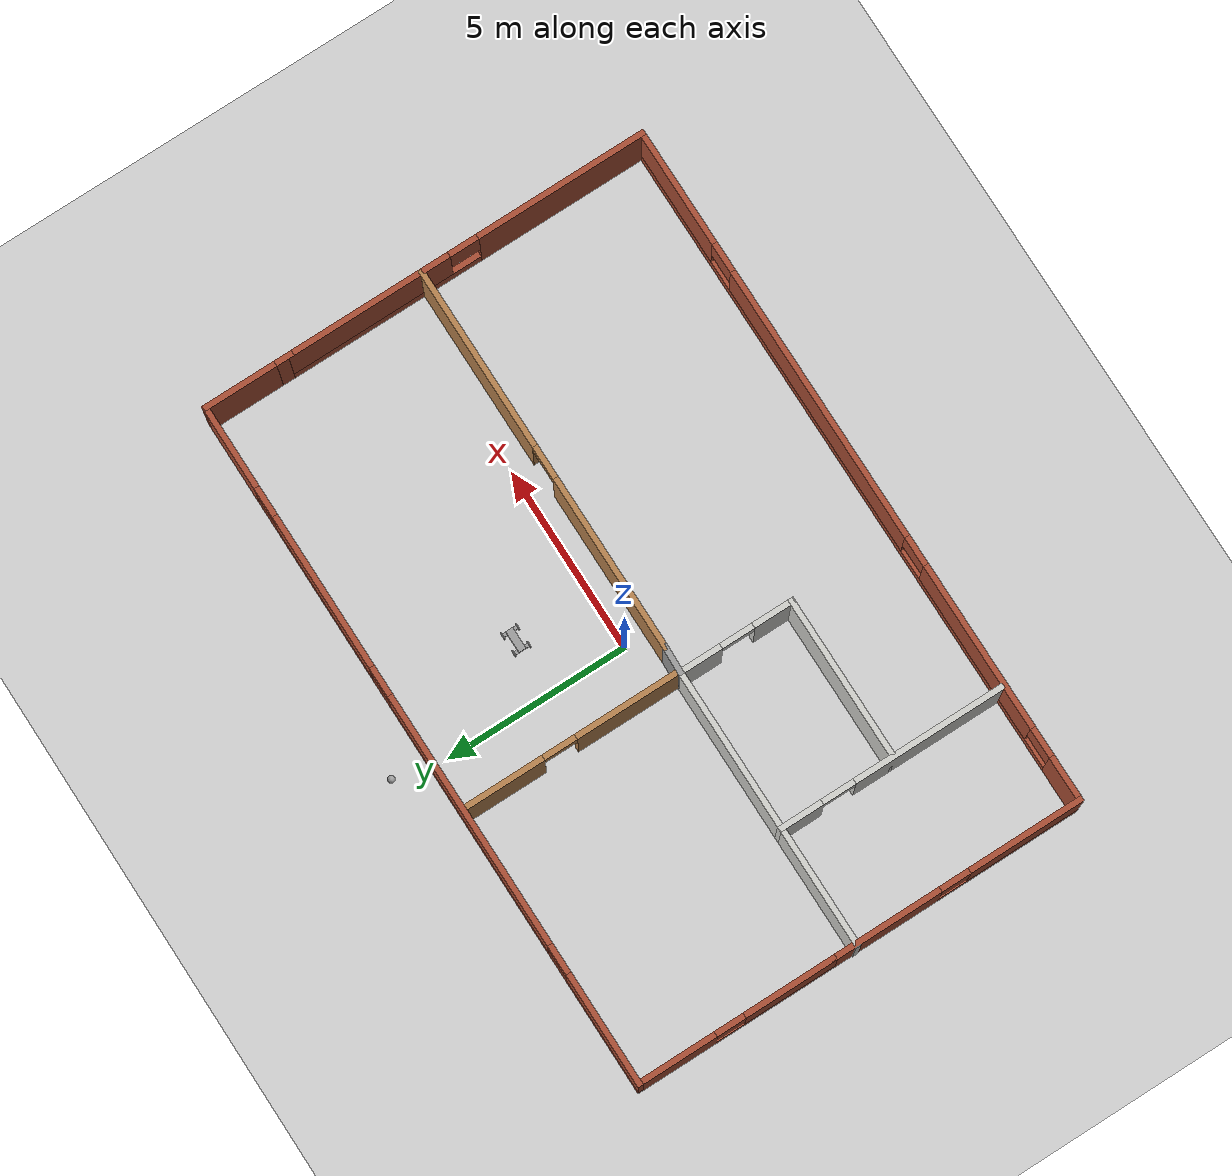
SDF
<sdf version="1.6">
 <world name="default">
  <model name="ground_plane">
   <static>1</static>
   <link name="link">
    <collision name="collision">
     <geometry><plane><normal>0 0 1</normal><size>100 100</size></plane></geometry>
     <surface>
      <contact><collide_bitmask>65535</collide_bitmask></contact>
      <friction><ode><mu>100</mu><mu2>50</mu2></ode></friction>
     </surface>
    </collision>
    <visual name="visual">
     <cast_shadows>0</cast_shadows>
     <geometry><plane><normal>0 0 1</normal><size>100 100</size></plane></geometry>
     <material>
      <script><uri>file://media/materials/scripts/gazebo.material</uri><name>Gazebo/Grey</name></script>
     </material>
    </visual>
   </link>
  </model>
  <model name="Ground_Floor">
   <pose>0.3947 -0.6993 0 0 -0 0</pose>
   <link name="Wall_15">
    <pose>-9.41574 3.425 0 0 0 -1.5708</pose>
    <visual name="Wall_15_Visual_0">
     <pose>-1.66053 0 1.25 0 -0 0</pose>
     <geometry><box><size>2.17893 0.15 2.5</size></box></geometry>
     <material>
      <script><uri>file://media/materials/scripts/gazebo.material</uri><name>Gazebo/Bricks</name></script>
      <ambient>1 1 1 1</ambient>
     </material>
     <meta><layer>0</layer></meta>
    </visual>
    <collision name="Wall_15_Collision_0">
     <geometry><box><size>2.17893 0.15 2.5</size></box></geometry>
     <pose>-1.66053 0 1.25 0 -0 0</pose>
    </collision>
    <visual name="Wall_15_Visual_1">
     <pose>1.08947 0 0.25 0 -0 0</pose>
     <geometry><box><size>3.32107 0.15 0.5</size></box></geometry>
     <material>
      <script><uri>file://media/materials/scripts/gazebo.material</uri><name>Gazebo/Bricks</name></script>
      <ambient>1 1 1 1</ambient>
     </material>
     <meta><layer>0</layer></meta>
    </visual>
    <collision name="Wall_15_Collision_1">
     <geometry><box><size>3.32107 0.15 0.5</size></box></geometry>
     <pose>1.08947 0 0.25 0 -0 0</pose>
    </collision>
    <visual name="Wall_15_Visual_2">
     <pose>1.48947 0 1.5 0 -0 0</pose>
     <geometry><box><size>2.52107 0.15 2</size></box></geometry>
     <material>
      <script><uri>file://media/materials/scripts/gazebo.material</uri><name>Gazebo/Bricks</name></script>
      <ambient>1 1 1 1</ambient>
     </material>
     <meta><layer>0</layer></meta>
    </visual>
    <collision name="Wall_15_Collision_2">
     <geometry><box><size>2.52107 0.15 2</size></box></geometry>
     <pose>1.48947 0 1.5 0 -0 0</pose>
    </collision>
    <visual name="Wall_15_Visual_3">
     <pose>-0.171069 0 1.9 0 -0 0</pose>
     <geometry><box><size>0.8 0.15 1.2</size></box></geometry>
     <material>
      <script><uri>file://media/materials/scripts/gazebo.material</uri><name>Gazebo/Bricks</name></script>
      <ambient>1 1 1 1</ambient>
     </material>
     <meta><layer>0</layer></meta>
    </visual>
    <collision name="Wall_15_Collision_3">
     <geometry><box><size>0.8 0.15 1.2</size></box></geometry>
     <pose>-0.171069 0 1.9 0 -0 0</pose>
    </collision>
   </link>
   <link name="Wall_17">
    <pose>-9.41574 -2.675 0 0 0 -1.5708</pose>
    <visual name="Wall_17_Visual_0">
     <pose>-1.97447 0 1.25 0 -0 0</pose>
     <geometry><box><size>3.05106 0.15 2.5</size></box></geometry>
     <material>
      <script><uri>file://media/materials/scripts/gazebo.material</uri><name>Gazebo/Bricks</name></script>
      <ambient>1 1 1 1</ambient>
     </material>
     <meta><layer>0</layer></meta>
    </visual>
    <collision name="Wall_17_Collision_0">
     <geometry><box><size>3.05106 0.15 2.5</size></box></geometry>
     <pose>-1.97447 0 1.25 0 -0 0</pose>
    </collision>
    <visual name="Wall_17_Visual_1">
     <pose>1.52553 0 0.25 0 -0 0</pose>
     <geometry><box><size>3.94894 0.15 0.5</size></box></geometry>
     <material>
      <script><uri>file://media/materials/scripts/gazebo.material</uri><name>Gazebo/Bricks</name></script>
      <ambient>1 1 1 1</ambient>
     </material>
     <meta><layer>0</layer></meta>
    </visual>
    <collision name="Wall_17_Collision_1">
     <geometry><box><size>3.94894 0.15 0.5</size></box></geometry>
     <pose>1.52553 0 0.25 0 -0 0</pose>
    </collision>
    <visual name="Wall_17_Visual_2">
     <pose>1.92553 0 1.5 0 -0 0</pose>
     <geometry><box><size>3.14894 0.15 2</size></box></geometry>
     <material>
      <script><uri>file://media/materials/scripts/gazebo.material</uri><name>Gazebo/Bricks</name></script>
      <ambient>1 1 1 1</ambient>
     </material>
     <meta><layer>0</layer></meta>
    </visual>
    <collision name="Wall_17_Collision_2">
     <geometry><box><size>3.14894 0.15 2</size></box></geometry>
     <pose>1.92553 0 1.5 0 -0 0</pose>
    </collision>
    <visual name="Wall_17_Visual_3">
     <pose>-0.048936 0 1.9 0 -0 0</pose>
     <geometry><box><size>0.8 0.15 1.2</size></box></geometry>
     <material>
      <script><uri>file://media/materials/scripts/gazebo.material</uri><name>Gazebo/Bricks</name></script>
      <ambient>1 1 1 1</ambient>
     </material>
     <meta><layer>0</layer></meta>
    </visual>
    <collision name="Wall_17_Collision_3">
     <geometry><box><size>0.8 0.15 1.2</size></box></geometry>
     <pose>-0.048936 0 1.9 0 -0 0</pose>
    </collision>
   </link>
   <link name="Wall_18">
    <pose>0.009256 -6.1 0 0 -0 0</pose>
    <visual name="Wall_18_Visual_0">
     <pose>-8.86219 0 1.25 0 -0 0</pose>
     <geometry><box><size>1.27563 0.15 2.5</size></box></geometry>
     <material>
      <script><uri>file://media/materials/scripts/gazebo.material</uri><name>Gazebo/Bricks</name></script>
      <ambient>1 1 1 1</ambient>
     </material>
     <meta><layer>0</layer></meta>
    </visual>
    <collision name="Wall_18_Collision_0">
     <geometry><box><size>1.27563 0.15 2.5</size></box></geometry>
     <pose>-8.86219 0 1.25 0 -0 0</pose>
    </collision>
    <visual name="Wall_18_Visual_1">
     <pose>0.637815 0 0.25 0 -0 0</pose>
     <geometry><box><size>17.7244 0.15 0.5</size></box></geometry>
     <material>
      <script><uri>file://media/materials/scripts/gazebo.material</uri><name>Gazebo/Bricks</name></script>
      <ambient>1 1 1 1</ambient>
     </material>
     <meta><layer>0</layer></meta>
    </visual>
    <collision name="Wall_18_Collision_1">
     <geometry><box><size>17.7244 0.15 0.5</size></box></geometry>
     <pose>0.637815 0 0.25 0 -0 0</pose>
    </collision>
    <visual name="Wall_18_Visual_2">
     <pose>-5.14122 0 1.5 0 -0 0</pose>
     <geometry><box><size>4.5663 0.15 2</size></box></geometry>
     <material>
      <script><uri>file://media/materials/scripts/gazebo.material</uri><name>Gazebo/Bricks</name></script>
      <ambient>1 1 1 1</ambient>
     </material>
     <meta><layer>0</layer></meta>
    </visual>
    <collision name="Wall_18_Collision_2">
     <geometry><box><size>4.5663 0.15 2</size></box></geometry>
     <pose>-5.14122 0 1.5 0 -0 0</pose>
    </collision>
    <visual name="Wall_18_Visual_3">
     <pose>1.70544 0 1.5 0 -0 0</pose>
     <geometry><box><size>7.52702 0.15 2</size></box></geometry>
     <material>
      <script><uri>file://media/materials/scripts/gazebo.material</uri><name>Gazebo/Bricks</name></script>
      <ambient>1 1 1 1</ambient>
     </material>
     <meta><layer>0</layer></meta>
    </visual>
    <collision name="Wall_18_Collision_3">
     <geometry><box><size>7.52702 0.15 2</size></box></geometry>
     <pose>1.70544 0 1.5 0 -0 0</pose>
    </collision>
    <visual name="Wall_18_Visual_4">
     <pose>7.88448 0 1.5 0 -0 0</pose>
     <geometry><box><size>3.23105 0.15 2</size></box></geometry>
     <material>
      <script><uri>file://media/materials/scripts/gazebo.material</uri><name>Gazebo/Bricks</name></script>
      <ambient>1 1 1 1</ambient>
     </material>
     <meta><layer>0</layer></meta>
    </visual>
    <collision name="Wall_18_Collision_4">
     <geometry><box><size>3.23105 0.15 2</size></box></geometry>
     <pose>7.88448 0 1.5 0 -0 0</pose>
    </collision>
    <visual name="Wall_18_Visual_5">
     <pose>-7.82437 0 1.9 0 -0 0</pose>
     <geometry><box><size>0.8 0.15 1.2</size></box></geometry>
     <material>
      <script><uri>file://media/materials/scripts/gazebo.material</uri><name>Gazebo/Bricks</name></script>
      <ambient>1 1 1 1</ambient>
     </material>
     <meta><layer>0</layer></meta>
    </visual>
    <collision name="Wall_18_Collision_5">
     <geometry><box><size>0.8 0.15 1.2</size></box></geometry>
     <pose>-7.82437 0 1.9 0 -0 0</pose>
    </collision>
    <visual name="Wall_18_Visual_6">
     <pose>-2.45807 0 1.9 0 -0 0</pose>
     <geometry><box><size>0.8 0.15 1.2</size></box></geometry>
     <material>
      <script><uri>file://media/materials/scripts/gazebo.material</uri><name>Gazebo/Bricks</name></script>
      <ambient>1 1 1 1</ambient>
     </material>
     <meta><layer>0</layer></meta>
    </visual>
    <collision name="Wall_18_Collision_6">
     <geometry><box><size>0.8 0.15 1.2</size></box></geometry>
     <pose>-2.45807 0 1.9 0 -0 0</pose>
    </collision>
    <visual name="Wall_18_Visual_7">
     <pose>5.86895 0 1.9 0 -0 0</pose>
     <geometry><box><size>0.8 0.15 1.2</size></box></geometry>
     <material>
      <script><uri>file://media/materials/scripts/gazebo.material</uri><name>Gazebo/Bricks</name></script>
      <ambient>1 1 1 1</ambient>
     </material>
     <meta><layer>0</layer></meta>
    </visual>
    <collision name="Wall_18_Collision_7">
     <geometry><box><size>0.8 0.15 1.2</size></box></geometry>
     <pose>5.86895 0 1.9 0 -0 0</pose>
    </collision>
   </link>
   <link name="Wall_19">
    <pose>9.43426 -1.175 0 0 -0 1.5708</pose>
    <visual name="Wall_19_Visual_0">
     <pose>-2.65066 0 1.25 0 -0 0</pose>
     <geometry><box><size>4.69869 0.15 2.5</size></box></geometry>
     <material>
      <script><uri>file://media/materials/scripts/gazebo.material</uri><name>Gazebo/Bricks</name></script>
      <ambient>1 1 1 1</ambient>
     </material>
     <meta><layer>0</layer></meta>
    </visual>
    <collision name="Wall_19_Collision_0">
     <geometry><box><size>4.69869 0.15 2.5</size></box></geometry>
     <pose>-2.65066 0 1.25 0 -0 0</pose>
    </collision>
    <visual name="Wall_19_Visual_1">
     <pose>2.34934 0 0.25 0 -0 0</pose>
     <geometry><box><size>5.30131 0.15 0.5</size></box></geometry>
     <material>
      <script><uri>file://media/materials/scripts/gazebo.material</uri><name>Gazebo/Bricks</name></script>
      <ambient>1 1 1 1</ambient>
     </material>
     <meta><layer>0</layer></meta>
    </visual>
    <collision name="Wall_19_Collision_1">
     <geometry><box><size>5.30131 0.15 0.5</size></box></geometry>
     <pose>2.34934 0 0.25 0 -0 0</pose>
    </collision>
    <visual name="Wall_19_Visual_2">
     <pose>2.74934 0 1.5 0 -0 0</pose>
     <geometry><box><size>4.50131 0.15 2</size></box></geometry>
     <material>
      <script><uri>file://media/materials/scripts/gazebo.material</uri><name>Gazebo/Bricks</name></script>
      <ambient>1 1 1 1</ambient>
     </material>
     <meta><layer>0</layer></meta>
    </visual>
    <collision name="Wall_19_Collision_2">
     <geometry><box><size>4.50131 0.15 2</size></box></geometry>
     <pose>2.74934 0 1.5 0 -0 0</pose>
    </collision>
    <visual name="Wall_19_Visual_3">
     <pose>0.098686 0 1.9 0 -0 0</pose>
     <geometry><box><size>0.8 0.15 1.2</size></box></geometry>
     <material>
      <script><uri>file://media/materials/scripts/gazebo.material</uri><name>Gazebo/Bricks</name></script>
      <ambient>1 1 1 1</ambient>
     </material>
     <meta><layer>0</layer></meta>
    </visual>
    <collision name="Wall_19_Collision_3">
     <geometry><box><size>0.8 0.15 1.2</size></box></geometry>
     <pose>0.098686 0 1.9 0 -0 0</pose>
    </collision>
   </link>
   <link name="Wall_21">
    <pose>9.43426 4.925 0 0 -0 1.5708</pose>
    <visual name="Wall_21_Visual_0">
     <pose>0 0 1.25 0 -0 0</pose>
     <geometry><box><size>2.5 0.15 2.5</size></box></geometry>
     <material>
      <script><uri>file://media/materials/scripts/gazebo.material</uri><name>Gazebo/Bricks</name></script>
      <ambient>1 1 1 1</ambient>
     </material>
     <meta><layer>0</layer></meta>
    </visual>
    <collision name="Wall_21_Collision_0">
     <geometry><box><size>2.5 0.15 2.5</size></box></geometry>
     <pose>0 0 1.25 0 -0 0</pose>
    </collision>
    <visual name="Wall_21_Visual_1">
     <pose>0.243361 0 1.25 0 -0 0</pose>
     <geometry><box><size>2.01328 0.15 2.5</size></box></geometry>
     <material>
      <script><uri>file://media/materials/scripts/gazebo.material</uri><name>Gazebo/Bricks</name></script>
      <ambient>1 1 1 1</ambient>
     </material>
     <meta><layer>0</layer></meta>
    </visual>
    <collision name="Wall_21_Collision_1">
     <geometry><box><size>2.01328 0.15 2.5</size></box></geometry>
     <pose>0.243361 0 1.25 0 -0 0</pose>
    </collision>
   </link>
   <link name="Wall_22">
    <pose>0.009256 6.1 0 0 -0 3.14159</pose>
    <visual name="Wall_22_Visual_0">
     <pose>-8.33552 0 1.25 0 -0 0</pose>
     <geometry><box><size>2.32896 0.15 2.5</size></box></geometry>
     <material>
      <script><uri>file://media/materials/scripts/gazebo.material</uri><name>Gazebo/Bricks</name></script>
      <ambient>1 1 1 1</ambient>
     </material>
     <meta><layer>0</layer></meta>
    </visual>
    <collision name="Wall_22_Collision_0">
     <geometry><box><size>2.32896 0.15 2.5</size></box></geometry>
     <pose>-8.33552 0 1.25 0 -0 0</pose>
    </collision>
    <visual name="Wall_22_Visual_1">
     <pose>1.16448 0 0.25 0 -0 0</pose>
     <geometry><box><size>16.671 0.15 0.5</size></box></geometry>
     <material>
      <script><uri>file://media/materials/scripts/gazebo.material</uri><name>Gazebo/Bricks</name></script>
      <ambient>1 1 1 1</ambient>
     </material>
     <meta><layer>0</layer></meta>
    </visual>
    <collision name="Wall_22_Collision_1">
     <geometry><box><size>16.671 0.15 0.5</size></box></geometry>
     <pose>1.16448 0 0.25 0 -0 0</pose>
    </collision>
    <visual name="Wall_22_Visual_2">
     <pose>-4.24981 0 1.5 0 -0 0</pose>
     <geometry><box><size>4.24247 0.15 2</size></box></geometry>
     <material>
      <script><uri>file://media/materials/scripts/gazebo.material</uri><name>Gazebo/Bricks</name></script>
      <ambient>1 1 1 1</ambient>
     </material>
     <meta><layer>0</layer></meta>
    </visual>
    <collision name="Wall_22_Collision_2">
     <geometry><box><size>4.24247 0.15 2</size></box></geometry>
     <pose>-4.24981 0 1.5 0 -0 0</pose>
    </collision>
    <visual name="Wall_22_Visual_3">
     <pose>2.13424 0 1.5 0 -0 0</pose>
     <geometry><box><size>6.92562 0.15 2</size></box></geometry>
     <material>
      <script><uri>file://media/materials/scripts/gazebo.material</uri><name>Gazebo/Bricks</name></script>
      <ambient>1 1 1 1</ambient>
     </material>
     <meta><layer>0</layer></meta>
    </visual>
    <collision name="Wall_22_Collision_3">
     <geometry><box><size>6.92562 0.15 2</size></box></geometry>
     <pose>2.13424 0 1.5 0 -0 0</pose>
    </collision>
    <visual name="Wall_22_Visual_4">
     <pose>7.94853 0 1.5 0 -0 0</pose>
     <geometry><box><size>3.10295 0.15 2</size></box></geometry>
     <material>
      <script><uri>file://media/materials/scripts/gazebo.material</uri><name>Gazebo/Bricks</name></script>
      <ambient>1 1 1 1</ambient>
     </material>
     <meta><layer>0</layer></meta>
    </visual>
    <collision name="Wall_22_Collision_4">
     <geometry><box><size>3.10295 0.15 2</size></box></geometry>
     <pose>7.94853 0 1.5 0 -0 0</pose>
    </collision>
    <visual name="Wall_22_Visual_5">
     <pose>-6.77104 0 1.9 0 -0 0</pose>
     <geometry><box><size>0.8 0.15 1.2</size></box></geometry>
     <material>
      <script><uri>file://media/materials/scripts/gazebo.material</uri><name>Gazebo/Bricks</name></script>
      <ambient>1 1 1 1</ambient>
     </material>
     <meta><layer>0</layer></meta>
    </visual>
    <collision name="Wall_22_Collision_5">
     <geometry><box><size>0.8 0.15 1.2</size></box></geometry>
     <pose>-6.77104 0 1.9 0 -0 0</pose>
    </collision>
    <visual name="Wall_22_Visual_6">
     <pose>-1.72857 0 1.9 0 -0 0</pose>
     <geometry><box><size>0.8 0.15 1.2</size></box></geometry>
     <material>
      <script><uri>file://media/materials/scripts/gazebo.material</uri><name>Gazebo/Bricks</name></script>
      <ambient>1 1 1 1</ambient>
     </material>
     <meta><layer>0</layer></meta>
    </visual>
    <collision name="Wall_22_Collision_6">
     <geometry><box><size>0.8 0.15 1.2</size></box></geometry>
     <pose>-1.72857 0 1.9 0 -0 0</pose>
    </collision>
    <visual name="Wall_22_Visual_7">
     <pose>5.99705 0 1.9 0 -0 0</pose>
     <geometry><box><size>0.8 0.15 1.2</size></box></geometry>
     <material>
      <script><uri>file://media/materials/scripts/gazebo.material</uri><name>Gazebo/Bricks</name></script>
      <ambient>1 1 1 1</ambient>
     </material>
     <meta><layer>0</layer></meta>
    </visual>
    <collision name="Wall_22_Collision_7">
     <geometry><box><size>0.8 0.15 1.2</size></box></geometry>
     <pose>5.99705 0 1.9 0 -0 0</pose>
    </collision>
   </link>
   <link name="Wall_24">
    <collision name="Wall_24_Collision">
     <geometry><box><size>7.75 0.15 2.5</size></box></geometry>
     <pose>0 0 1.25 0 -0 0</pose>
    </collision>
    <visual name="Wall_24_Visual">
     <pose>0 0 1.25 0 -0 0</pose>
     <geometry><box><size>7.75 0.15 2.5</size></box></geometry>
     <material>
      <script><uri>file://media/materials/scripts/gazebo.material</uri><name>Gazebo/CeilingTiled</name></script>
      <ambient>1 1 1 1</ambient>
     </material>
     <meta><layer>0</layer></meta>
    </visual>
    <pose>-5.63426 0.103347 0 0 -0 0</pose>
   </link>
   <link name="Wall_25">
    <pose>-1.83426 3.02835 0 0 -0 1.5708</pose>
    <visual name="Wall_25_Visual_0">
     <pose>-1.5221 0 1.25 0 -0 0</pose>
     <geometry><box><size>2.95581 0.15 2.5</size></box></geometry>
     <material>
      <script><uri>file://media/materials/scripts/gazebo.material</uri><name>Gazebo/Wood</name></script>
      <ambient>1 1 1 1</ambient>
     </material>
     <meta><layer>0</layer></meta>
    </visual>
    <collision name="Wall_25_Collision_0">
     <geometry><box><size>2.95581 0.15 2.5</size></box></geometry>
     <pose>-1.5221 0 1.25 0 -0 0</pose>
    </collision>
    <visual name="Wall_25_Visual_1">
     <pose>1.9279 0 1.25 0 -0 0</pose>
     <geometry><box><size>2.14419 0.15 2.5</size></box></geometry>
     <material>
      <script><uri>file://media/materials/scripts/gazebo.material</uri><name>Gazebo/Wood</name></script>
      <ambient>1 1 1 1</ambient>
     </material>
     <meta><layer>0</layer></meta>
    </visual>
    <collision name="Wall_25_Collision_1">
     <geometry><box><size>2.14419 0.15 2.5</size></box></geometry>
     <pose>1.9279 0 1.25 0 -0 0</pose>
    </collision>
    <visual name="Wall_25_Visual_2">
     <pose>0.405807 0 2.25 0 -0 0</pose>
     <geometry><box><size>0.9 0.15 0.5</size></box></geometry>
     <material>
      <script><uri>file://media/materials/scripts/gazebo.material</uri><name>Gazebo/Wood</name></script>
      <ambient>1 1 1 1</ambient>
     </material>
     <meta><layer>0</layer></meta>
    </visual>
    <collision name="Wall_25_Collision_2">
     <geometry><box><size>0.9 0.15 0.5</size></box></geometry>
     <pose>0.405807 0 2.25 0 -0 0</pose>
    </collision>
   </link>
   <link name="Wall_27">
    <pose>-6.2191 -2.94665 0 0 0 -1.5708</pose>
    <visual name="Wall_27_Visual_0">
     <pose>-2.52606 0 1.25 0 -0 0</pose>
     <geometry><box><size>1.19788 0.15 2.5</size></box></geometry>
     <material>
      <script><uri>file://media/materials/scripts/gazebo.material</uri><name>Gazebo/CeilingTiled</name></script>
      <ambient>1 1 1 1</ambient>
     </material>
     <meta><layer>0</layer></meta>
    </visual>
    <collision name="Wall_27_Collision_0">
     <geometry><box><size>1.19788 0.15 2.5</size></box></geometry>
     <pose>-2.52606 0 1.25 0 -0 0</pose>
    </collision>
    <visual name="Wall_27_Visual_1">
     <pose>1.04894 0 1.25 0 -0 0</pose>
     <geometry><box><size>4.15212 0.15 2.5</size></box></geometry>
     <material>
      <script><uri>file://media/materials/scripts/gazebo.material</uri><name>Gazebo/CeilingTiled</name></script>
      <ambient>1 1 1 1</ambient>
     </material>
     <meta><layer>0</layer></meta>
    </visual>
    <collision name="Wall_27_Collision_1">
     <geometry><box><size>4.15212 0.15 2.5</size></box></geometry>
     <pose>1.04894 0 1.25 0 -0 0</pose>
    </collision>
    <visual name="Wall_27_Visual_2">
     <pose>-1.47712 0 2.25 0 -0 0</pose>
     <geometry><box><size>0.9 0.15 0.5</size></box></geometry>
     <material>
      <script><uri>file://media/materials/scripts/gazebo.material</uri><name>Gazebo/CeilingTiled</name></script>
      <ambient>1 1 1 1</ambient>
     </material>
     <meta><layer>0</layer></meta>
    </visual>
    <collision name="Wall_27_Collision_2">
     <geometry><box><size>0.9 0.15 0.5</size></box></geometry>
     <pose>-1.47712 0 2.25 0 -0 0</pose>
    </collision>
   </link>
   <link name="Wall_29">
    <collision name="Wall_29_Collision">
     <geometry><box><size>4.5 0.15 2.5</size></box></geometry>
     <pose>0 0 1.25 0 -0 0</pose>
    </collision>
    <visual name="Wall_29_Visual">
     <pose>0 0 1.25 0 -0 0</pose>
     <geometry><box><size>4.5 0.15 2.5</size></box></geometry>
     <material>
      <script><uri>file://media/materials/scripts/gazebo.material</uri><name>Gazebo/CeilingTiled</name></script>
      <ambient>1 1 1 1</ambient>
     </material>
     <meta><layer>0</layer></meta>
    </visual>
    <pose>-4.0441 -2.99615 0 0 -0 0</pose>
   </link>
   <link name="Wall_30">
    <pose>-1.8691 -1.44615 0 0 -0 1.5708</pose>
    <visual name="Wall_30_Visual_0">
     <pose>-1.04919 0 1.25 0 -0 0</pose>
     <geometry><box><size>1.15162 0.15 2.5</size></box></geometry>
     <material>
      <script><uri>file://media/materials/scripts/gazebo.material</uri><name>Gazebo/CeilingTiled</name></script>
      <ambient>1 1 1 1</ambient>
     </material>
     <meta><layer>0</layer></meta>
    </visual>
    <collision name="Wall_30_Collision_0">
     <geometry><box><size>1.15162 0.15 2.5</size></box></geometry>
     <pose>-1.04919 0 1.25 0 -0 0</pose>
    </collision>
    <visual name="Wall_30_Visual_1">
     <pose>1.02581 0 1.25 0 -0 0</pose>
     <geometry><box><size>1.19838 0.15 2.5</size></box></geometry>
     <material>
      <script><uri>file://media/materials/scripts/gazebo.material</uri><name>Gazebo/CeilingTiled</name></script>
      <ambient>1 1 1 1</ambient>
     </material>
     <meta><layer>0</layer></meta>
    </visual>
    <collision name="Wall_30_Collision_1">
     <geometry><box><size>1.19838 0.15 2.5</size></box></geometry>
     <pose>1.02581 0 1.25 0 -0 0</pose>
    </collision>
    <visual name="Wall_30_Visual_2">
     <pose>-0.02338 0 2.25 0 -0 0</pose>
     <geometry><box><size>0.9 0.15 0.5</size></box></geometry>
     <material>
      <script><uri>file://media/materials/scripts/gazebo.material</uri><name>Gazebo/CeilingTiled</name></script>
      <ambient>1 1 1 1</ambient>
     </material>
     <meta><layer>0</layer></meta>
    </visual>
    <collision name="Wall_30_Collision_2">
     <geometry><box><size>0.9 0.15 0.5</size></box></geometry>
     <pose>-0.02338 0 2.25 0 -0 0</pose>
    </collision>
   </link>
   <link name="Wall_32">
    <pose>4.11719 0.080217 0 0 -0 3.14159</pose>
    <visual name="Wall_32_Visual_0">
     <pose>-2.86778 0 1.25 0 -0 0</pose>
     <geometry><box><size>5.01443 0.15 2.5</size></box></geometry>
     <material>
      <script><uri>file://media/materials/scripts/gazebo.material</uri><name>Gazebo/Wood</name></script>
      <ambient>1 1 1 1</ambient>
     </material>
     <meta><layer>0</layer></meta>
    </visual>
    <collision name="Wall_32_Collision_0">
     <geometry><box><size>5.01443 0.15 2.5</size></box></geometry>
     <pose>-2.86778 0 1.25 0 -0 0</pose>
    </collision>
    <visual name="Wall_32_Visual_1">
     <pose>2.95722 0 1.25 0 -0 0</pose>
     <geometry><box><size>4.83557 0.15 2.5</size></box></geometry>
     <material>
      <script><uri>file://media/materials/scripts/gazebo.material</uri><name>Gazebo/Wood</name></script>
      <ambient>1 1 1 1</ambient>
     </material>
     <meta><layer>0</layer></meta>
    </visual>
    <collision name="Wall_32_Collision_1">
     <geometry><box><size>4.83557 0.15 2.5</size></box></geometry>
     <pose>2.95722 0 1.25 0 -0 0</pose>
    </collision>
    <visual name="Wall_32_Visual_2">
     <pose>0.089432 0 2.25 0 -0 0</pose>
     <geometry><box><size>0.9 0.15 0.5</size></box></geometry>
     <material>
      <script><uri>file://media/materials/scripts/gazebo.material</uri><name>Gazebo/Wood</name></script>
      <ambient>1 1 1 1</ambient>
     </material>
     <meta><layer>0</layer></meta>
    </visual>
    <collision name="Wall_32_Collision_2">
     <geometry><box><size>0.9 0.15 0.5</size></box></geometry>
     <pose>0.089432 0 2.25 0 -0 0</pose>
    </collision>
   </link>
   <link name="Wall_33">
    <collision name="Wall_33_Collision">
     <geometry><box><size>0.836697 0.15 2.5</size></box></geometry>
     <pose>0 0 1.25 0 -0 0</pose>
    </collision>
    <visual name="Wall_33_Visual">
     <pose>0 0 1.25 0 -0 0</pose>
     <geometry><box><size>0.836697 0.15 2.5</size></box></geometry>
     <material>
      <script><uri>file://media/materials/scripts/gazebo.material</uri><name>Gazebo/Grey</name></script>
      <ambient>1 1 1 1</ambient>
     </material>
     <meta><layer>0</layer></meta>
    </visual>
    <pose>-1.52596 0.092031 0 0 -0 3.10718</pose>
   </link>
   <static>1</static>
  </model>
  <model name="Four_Wheel_Model">
   <link name="link_0">
    <pose>0 0 0.2 -6e-06 -0 1.5e-05</pose>
    <inertial>
     <mass>1</mass>
     <inertia>
      <ixx>0.166667</ixx>
      <ixy>0</ixy>
      <ixz>0</ixz>
      <iyy>0.166667</iyy>
      <iyz>0</iyz>
      <izz>0.166667</izz>
     </inertia>
    </inertial>
    <visual name="visual">
     <geometry><box><size>0.6 0.2 0.1</size></box></geometry>
     <material>
      <lighting>1</lighting>
      <script><uri>file://media/materials/scripts/gazebo.material</uri><name>Gazebo/Grey</name></script>
      <ambient>0.3 0.3 0.3 1</ambient>
      <diffuse>0.7 0.7 0.7 1</diffuse>
      <specular>0.01 0.01 0.01 1</specular>
      <emissive>0 0 0 1</emissive>
      <shader type="vertex"><normal_map>__default__</normal_map></shader>
     </material>
    </visual>
    <collision name="collision">
     <geometry><box><size>0.6 0.2 0.1</size></box></geometry>
     <surface>
      <friction>
       <ode><mu>1</mu><mu2>1</mu2><fdir1>0 0 0</fdir1><slip1>0</slip1><slip2>0</slip2></ode>
       <torsional>
        <coefficient>1</coefficient>
        <patch_radius>0</patch_radius>
        <surface_radius>0</surface_radius>
        <use_patch_radius>1</use_patch_radius>
        <ode><slip>0</slip></ode>
       </torsional>
      </friction>
      <bounce><restitution_coefficient>0</restitution_coefficient><threshold>1e+06</threshold></bounce>
      <contact>
       <collide_without_contact>0</collide_without_contact>
       <collide_without_contact_bitmask>1</collide_without_contact_bitmask>
       <collide_bitmask>1</collide_bitmask>
       <ode>
        <soft_cfm>0</soft_cfm>
        <soft_erp>0.2</soft_erp>
        <kp>1e+13</kp>
        <kd>1</kd>
        <max_vel>0.01</max_vel>
        <min_depth>0</min_depth>
       </ode>
       <bullet>
        <split_impulse>1</split_impulse>
        <split_impulse_penetration_threshold>-0.01</split_impulse_penetration_threshold>
        <soft_cfm>0</soft_cfm>
        <soft_erp>0.2</soft_erp>
        <kp>1e+13</kp>
        <kd>1</kd>
       </bullet>
      </contact>
     </surface>
    </collision>
   </link>
   <link name="link_0_0">
    <pose>-0.250001 0 0.162322 -6e-06 0 0</pose>
    <inertial>
     <mass>1</mass>
     <inertia>
      <ixx>0.166667</ixx>
      <ixy>0</ixy>
      <ixz>0</ixz>
      <iyy>0.166667</iyy>
      <iyz>0</iyz>
      <izz>0.166667</izz>
     </inertia>
    </inertial>
    <visual name="visual">
     <geometry><box><size>0.1 0.4 0.05</size></box></geometry>
     <material>
      <lighting>1</lighting>
      <script><uri>file://media/materials/scripts/gazebo.material</uri><name>Gazebo/Grey</name></script>
      <shader type="pixel"><normal_map>__default__</normal_map></shader>
      <ambient>0.3 0.3 0.3 1</ambient>
      <diffuse>0.7 0.7 0.7 1</diffuse>
      <specular>0.01 0.01 0.01 1</specular>
      <emissive>0 0 0 1</emissive>
     </material>
    </visual>
    <collision name="collision">
     <geometry><box><size>0.1 0.4 0.05</size></box></geometry>
     <surface>
      <friction>
       <ode><mu>1</mu><mu2>1</mu2><fdir1>0 0 0</fdir1><slip1>0</slip1><slip2>0</slip2></ode>
       <torsional>
        <coefficient>1</coefficient>
        <patch_radius>0</patch_radius>
        <surface_radius>0</surface_radius>
        <use_patch_radius>1</use_patch_radius>
        <ode><slip>0</slip></ode>
       </torsional>
      </friction>
      <bounce><restitution_coefficient>0</restitution_coefficient><threshold>1e+06</threshold></bounce>
      <contact>
       <collide_without_contact>0</collide_without_contact>
       <collide_without_contact_bitmask>1</collide_without_contact_bitmask>
       <collide_bitmask>1</collide_bitmask>
       <ode>
        <soft_cfm>0</soft_cfm>
        <soft_erp>0.2</soft_erp>
        <kp>1e+13</kp>
        <kd>1</kd>
        <max_vel>0.01</max_vel>
        <min_depth>0</min_depth>
       </ode>
       <bullet>
        <split_impulse>1</split_impulse>
        <split_impulse_penetration_threshold>-0.01</split_impulse_penetration_threshold>
        <soft_cfm>0</soft_cfm>
        <soft_erp>0.2</soft_erp>
        <kp>1e+13</kp>
        <kd>1</kd>
       </bullet>
      </contact>
     </surface>
    </collision>
   </link>
   <link name="link_0_clone_clone">
    <pose>0.249959 4e-06 0.175 -0 6e-06 1.57102</pose>
    <inertial>
     <mass>1</mass>
     <inertia>
      <ixx>0.166667</ixx>
      <ixy>0</ixy>
      <ixz>0</ixz>
      <iyy>0.166667</iyy>
      <iyz>0</iyz>
      <izz>0.166667</izz>
     </inertia>
    </inertial>
    <visual name="visual">
     <geometry><box><size>0.4 0.1 0.05</size></box></geometry>
     <material>
      <lighting>1</lighting>
      <script><uri>file://media/materials/scripts/gazebo.material</uri><name>Gazebo/Grey</name></script>
      <ambient>0.3 0.3 0.3 1</ambient>
      <diffuse>0.7 0.7 0.7 1</diffuse>
      <specular>0.01 0.01 0.01 1</specular>
      <emissive>0 0 0 1</emissive>
      <shader type="vertex"><normal_map>__default__</normal_map></shader>
     </material>
    </visual>
    <collision name="collision">
     <geometry><box><size>0.4 0.1 0.05</size></box></geometry>
     <surface>
      <friction>
       <ode><mu>1</mu><mu2>1</mu2><fdir1>0 0 0</fdir1><slip1>0</slip1><slip2>0</slip2></ode>
       <torsional>
        <coefficient>1</coefficient>
        <patch_radius>0</patch_radius>
        <surface_radius>0</surface_radius>
        <use_patch_radius>1</use_patch_radius>
        <ode><slip>0</slip></ode>
       </torsional>
      </friction>
      <bounce><restitution_coefficient>0</restitution_coefficient><threshold>1e+06</threshold></bounce>
      <contact>
       <collide_without_contact>0</collide_without_contact>
       <collide_without_contact_bitmask>1</collide_without_contact_bitmask>
       <collide_bitmask>1</collide_bitmask>
       <ode>
        <soft_cfm>0</soft_cfm>
        <soft_erp>0.2</soft_erp>
        <kp>1e+13</kp>
        <kd>1</kd>
        <max_vel>0.01</max_vel>
        <min_depth>0</min_depth>
       </ode>
       <bullet>
        <split_impulse>1</split_impulse>
        <split_impulse_penetration_threshold>-0.01</split_impulse_penetration_threshold>
        <soft_cfm>0</soft_cfm>
        <soft_erp>0.2</soft_erp>
        <kp>1e+13</kp>
        <kd>1</kd>
       </bullet>
      </contact>
     </surface>
    </collision>
   </link>
   <link name="link_1">
    <pose>0.250006 -0.209996 0.175001 -1.57012 1.57059 -3.14111</pose>
    <inertial>
     <mass>1</mass>
     <inertia><ixx>0.145833</ixx><ixy>0</ixy><ixz>0</ixz><iyy>0.145833</iyy><iyz>0</iyz><izz>0.125</izz></inertia>
    </inertial>
    <visual name="visual">
     <geometry><cylinder><radius>0.1</radius><length>0.025</length></cylinder></geometry>
     <material>
      <lighting>1</lighting>
      <script><uri>file://media/materials/scripts/gazebo.material</uri><name>Gazebo/Grey</name></script>
      <shader type="pixel"><normal_map>__default__</normal_map></shader>
      <ambient>0.3 0.3 0.3 1</ambient>
      <diffuse>0.7 0.7 0.7 1</diffuse>
      <specular>0.01 0.01 0.01 1</specular>
      <emissive>0 0 0 1</emissive>
     </material>
    </visual>
    <collision name="collision">
     <geometry><cylinder><radius>0.1</radius><length>0.025</length></cylinder></geometry>
     <surface>
      <friction>
       <ode><mu>1</mu><mu2>1</mu2><fdir1>0 0 0</fdir1><slip1>0</slip1><slip2>0</slip2></ode>
       <torsional>
        <coefficient>1</coefficient>
        <patch_radius>0</patch_radius>
        <surface_radius>0</surface_radius>
        <use_patch_radius>1</use_patch_radius>
        <ode><slip>0</slip></ode>
       </torsional>
      </friction>
      <bounce><restitution_coefficient>0</restitution_coefficient><threshold>1e+06</threshold></bounce>
      <contact>
       <collide_without_contact>0</collide_without_contact>
       <collide_without_contact_bitmask>1</collide_without_contact_bitmask>
       <collide_bitmask>1</collide_bitmask>
       <ode>
        <soft_cfm>0</soft_cfm>
        <soft_erp>0.2</soft_erp>
        <kp>1e+13</kp>
        <kd>1</kd>
        <max_vel>0.01</max_vel>
        <min_depth>0</min_depth>
       </ode>
       <bullet>
        <split_impulse>1</split_impulse>
        <split_impulse_penetration_threshold>-0.01</split_impulse_penetration_threshold>
        <soft_cfm>0</soft_cfm>
        <soft_erp>0.2</soft_erp>
        <kp>1e+13</kp>
        <kd>1</kd>
       </bullet>
      </contact>
     </surface>
    </collision>
   </link>
   <link name="link_1_0">
    <pose>0.249912 0.210004 0.174999 -1.5707 1.57059 3.14149</pose>
    <inertial>
     <mass>1</mass>
     <inertia><ixx>0.145833</ixx><ixy>0</ixy><ixz>0</ixz><iyy>0.145833</iyy><iyz>0</iyz><izz>0.125</izz></inertia>
    </inertial>
    <visual name="visual">
     <geometry><cylinder><radius>0.1</radius><length>0.025</length></cylinder></geometry>
     <material>
      <lighting>1</lighting>
      <script><uri>file://media/materials/scripts/gazebo.material</uri><name>Gazebo/Grey</name></script>
      <shader type="pixel"><normal_map>__default__</normal_map></shader>
      <ambient>0.3 0.3 0.3 1</ambient>
      <diffuse>0.7 0.7 0.7 1</diffuse>
      <specular>0.01 0.01 0.01 1</specular>
      <emissive>0 0 0 1</emissive>
     </material>
    </visual>
    <collision name="collision">
     <geometry><cylinder><radius>0.1</radius><length>0.025</length></cylinder></geometry>
     <surface>
      <friction>
       <ode><mu>1</mu><mu2>1</mu2><fdir1>0 0 0</fdir1><slip1>0</slip1><slip2>0</slip2></ode>
       <torsional>
        <coefficient>1</coefficient>
        <patch_radius>0</patch_radius>
        <surface_radius>0</surface_radius>
        <use_patch_radius>1</use_patch_radius>
        <ode><slip>0</slip></ode>
       </torsional>
      </friction>
      <bounce><restitution_coefficient>0</restitution_coefficient><threshold>1e+06</threshold></bounce>
      <contact>
       <collide_without_contact>0</collide_without_contact>
       <collide_without_contact_bitmask>1</collide_without_contact_bitmask>
       <collide_bitmask>1</collide_bitmask>
       <ode>
        <soft_cfm>0</soft_cfm>
        <soft_erp>0.2</soft_erp>
        <kp>1e+13</kp>
        <kd>1</kd>
        <max_vel>0.01</max_vel>
        <min_depth>0</min_depth>
       </ode>
       <bullet>
        <split_impulse>1</split_impulse>
        <split_impulse_penetration_threshold>-0.01</split_impulse_penetration_threshold>
        <soft_cfm>0</soft_cfm>
        <soft_erp>0.2</soft_erp>
        <kp>1e+13</kp>
        <kd>1</kd>
       </bullet>
      </contact>
     </surface>
    </collision>
   </link>
   <link name="link_2">
    <pose>-0.250001 -0.21 0.162323 -1.56983 1.57059 -3.14083</pose>
    <inertial>
     <mass>1</mass>
     <inertia><ixx>0.145833</ixx><ixy>0</ixy><ixz>0</ixz><iyy>0.145833</iyy><iyz>0</iyz><izz>0.125</izz></inertia>
    </inertial>
    <visual name="visual">
     <geometry><cylinder><radius>0.1</radius><length>0.025</length></cylinder></geometry>
     <material>
      <lighting>1</lighting>
      <script><uri>file://media/materials/scripts/gazebo.material</uri><name>Gazebo/Grey</name></script>
      <shader type="pixel"><normal_map>__default__</normal_map></shader>
      <ambient>0.3 0.3 0.3 1</ambient>
      <diffuse>0.7 0.7 0.7 1</diffuse>
      <specular>0.01 0.01 0.01 1</specular>
      <emissive>0 0 0 1</emissive>
     </material>
    </visual>
    <collision name="collision">
     <geometry><cylinder><radius>0.1</radius><length>0.025</length></cylinder></geometry>
     <surface>
      <friction>
       <ode><mu>1</mu><mu2>1</mu2><fdir1>0 0 0</fdir1><slip1>0</slip1><slip2>0</slip2></ode>
       <torsional>
        <coefficient>1</coefficient>
        <patch_radius>0</patch_radius>
        <surface_radius>0</surface_radius>
        <use_patch_radius>1</use_patch_radius>
        <ode><slip>0</slip></ode>
       </torsional>
      </friction>
      <bounce><restitution_coefficient>0</restitution_coefficient><threshold>1e+06</threshold></bounce>
      <contact>
       <collide_without_contact>0</collide_without_contact>
       <collide_without_contact_bitmask>1</collide_without_contact_bitmask>
       <collide_bitmask>1</collide_bitmask>
       <ode>
        <soft_cfm>0</soft_cfm>
        <soft_erp>0.2</soft_erp>
        <kp>1e+13</kp>
        <kd>1</kd>
        <max_vel>0.01</max_vel>
        <min_depth>0</min_depth>
       </ode>
       <bullet>
        <split_impulse>1</split_impulse>
        <split_impulse_penetration_threshold>-0.01</split_impulse_penetration_threshold>
        <soft_cfm>0</soft_cfm>
        <soft_erp>0.2</soft_erp>
        <kp>1e+13</kp>
        <kd>1</kd>
       </bullet>
      </contact>
     </surface>
    </collision>
   </link>
   <link name="link_3">
    <pose>-0.250001 0.21 0.162321 -1.57041 1.57059 -3.14141</pose>
    <inertial>
     <mass>1</mass>
     <inertia><ixx>0.145833</ixx><ixy>0</ixy><ixz>0</ixz><iyy>0.145833</iyy><iyz>0</iyz><izz>0.125</izz></inertia>
    </inertial>
    <visual name="visual">
     <geometry><cylinder><radius>0.1</radius><length>0.025</length></cylinder></geometry>
     <material>
      <lighting>1</lighting>
      <script><uri>file://media/materials/scripts/gazebo.material</uri><name>Gazebo/Grey</name></script>
      <shader type="pixel"><normal_map>__default__</normal_map></shader>
      <ambient>0.3 0.3 0.3 1</ambient>
      <diffuse>0.7 0.7 0.7 1</diffuse>
      <specular>0.01 0.01 0.01 1</specular>
      <emissive>0 0 0 1</emissive>
     </material>
    </visual>
    <collision name="collision">
     <geometry><cylinder><radius>0.1</radius><length>0.025</length></cylinder></geometry>
     <surface>
      <friction>
       <ode><mu>1</mu><mu2>1</mu2><fdir1>0 0 0</fdir1><slip1>0</slip1><slip2>0</slip2></ode>
       <torsional>
        <coefficient>1</coefficient>
        <patch_radius>0</patch_radius>
        <surface_radius>0</surface_radius>
        <use_patch_radius>1</use_patch_radius>
        <ode><slip>0</slip></ode>
       </torsional>
      </friction>
      <bounce><restitution_coefficient>0</restitution_coefficient><threshold>1e+06</threshold></bounce>
      <contact>
       <collide_without_contact>0</collide_without_contact>
       <collide_without_contact_bitmask>1</collide_without_contact_bitmask>
       <collide_bitmask>1</collide_bitmask>
       <ode>
        <soft_cfm>0</soft_cfm>
        <soft_erp>0.2</soft_erp>
        <kp>1e+13</kp>
        <kd>1</kd>
        <max_vel>0.01</max_vel>
        <min_depth>0</min_depth>
       </ode>
       <bullet>
        <split_impulse>1</split_impulse>
        <split_impulse_penetration_threshold>-0.01</split_impulse_penetration_threshold>
        <soft_cfm>0</soft_cfm>
        <soft_erp>0.2</soft_erp>
        <kp>1e+13</kp>
        <kd>1</kd>
       </bullet>
      </contact>
     </surface>
    </collision>
   </link>
   <joint name="link_0_0_JOINT_7" type="revolute">
    <parent>link_0_0</parent>
    <child>link_2</child>
    <axis>
     <xyz>0 0 -1</xyz>
     <use_parent_model_frame>0</use_parent_model_frame>
     <limit>
      <lower>-1.79769e+308</lower>
      <upper>1.79769e+308</upper>
      <effort>-1</effort>
      <velocity>-1</velocity>
     </limit>
     <dynamics>
      <spring_reference>0</spring_reference>
      <spring_stiffness>0</spring_stiffness>
      <damping>0</damping>
      <friction>0</friction>
     </dynamics>
    </axis>
    <physics>
     <ode><limit><cfm>0</cfm><erp>0.2</erp></limit><suspension><cfm>0</cfm><erp>0.2</erp></suspension></ode>
    </physics>
   </joint>
   <joint name="link_0_0_JOINT_8" type="revolute">
    <parent>link_0_0</parent>
    <child>link_3</child>
    <axis>
     <xyz>0 0 1</xyz>
     <use_parent_model_frame>0</use_parent_model_frame>
     <limit>
      <lower>-1.79769e+308</lower>
      <upper>1.79769e+308</upper>
      <effort>-1</effort>
      <velocity>-1</velocity>
     </limit>
     <dynamics>
      <spring_reference>0</spring_reference>
      <spring_stiffness>0</spring_stiffness>
      <damping>0</damping>
      <friction>0</friction>
     </dynamics>
    </axis>
    <physics>
     <ode><limit><cfm>0</cfm><erp>0.2</erp></limit><suspension><cfm>0</cfm><erp>0.2</erp></suspension></ode>
    </physics>
   </joint>
   <joint name="link_0_JOINT_0" type="fixed">
    <parent>link_0</parent>
    <child>link_0_clone_clone</child>
    <physics>
     <ode><limit><cfm>0</cfm><erp>0.2</erp></limit><suspension><cfm>0</cfm><erp>0.2</erp></suspension></ode>
    </physics>
   </joint>
   <joint name="link_0_JOINT_1" type="fixed">
    <parent>link_0</parent>
    <child>link_0_0</child>
    <physics>
     <ode><limit><cfm>0</cfm><erp>0.2</erp></limit><suspension><cfm>0</cfm><erp>0.2</erp></suspension></ode>
    </physics>
   </joint>
   <joint name="link_0_clone_clone_JOINT_5" type="revolute">
    <parent>link_0_clone_clone</parent>
    <child>link_1</child>
    <axis>
     <xyz>0 0 -1</xyz>
     <use_parent_model_frame>0</use_parent_model_frame>
     <limit>
      <lower>-1.79769e+308</lower>
      <upper>1.79769e+308</upper>
      <effort>-1</effort>
      <velocity>-1</velocity>
     </limit>
     <dynamics>
      <spring_reference>0</spring_reference>
      <spring_stiffness>0</spring_stiffness>
      <damping>0</damping>
      <friction>0</friction>
     </dynamics>
    </axis>
    <physics>
     <ode><limit><cfm>0</cfm><erp>0.2</erp></limit><suspension><cfm>0</cfm><erp>0.2</erp></suspension></ode>
    </physics>
   </joint>
   <joint name="link_0_clone_clone_JOINT_6" type="revolute">
    <parent>link_0_clone_clone</parent>
    <child>link_1_0</child>
    <axis>
     <xyz>0 0 1</xyz>
     <use_parent_model_frame>0</use_parent_model_frame>
     <limit>
      <lower>-1.79769e+308</lower>
      <upper>1.79769e+308</upper>
      <effort>-1</effort>
      <velocity>-1</velocity>
     </limit>
     <dynamics>
      <spring_reference>0</spring_reference>
      <spring_stiffness>0</spring_stiffness>
      <damping>0</damping>
      <friction>0</friction>
     </dynamics>
    </axis>
    <physics>
     <ode><limit><cfm>0</cfm><erp>0.2</erp></limit><suspension><cfm>0</cfm><erp>0.2</erp></suspension></ode>
    </physics>
   </joint>
   <static>0</static>
   <pose>1.5303 2.10212 -0.068608 4e-06 0.025354 0.000118</pose>
  </model>
  <model name="my_ball">
   <link name="link_0">
    <inertial>
     <mass>1</mass>
     <inertia><ixx>0.1</ixx><ixy>0</ixy><ixz>0</ixz><iyy>0.1</iyy><iyz>0</iyz><izz>0.1</izz></inertia>
    </inertial>
    <visual name="visual">
     <geometry><sphere><radius>0.1</radius></sphere></geometry>
     <material>
      <lighting>1</lighting>
      <script><uri>file://media/materials/scripts/gazebo.material</uri><name>Gazebo/Grey</name></script>
      <shader type="pixel"><normal_map>__default__</normal_map></shader>
      <ambient>1 1 1 1</ambient>
      <diffuse>1 1 1 1</diffuse>
      <specular>1 1 1 1</specular>
      <emissive>1 1 1 1</emissive>
     </material>
    </visual>
    <collision name="collision">
     <geometry><sphere><radius>0.1</radius></sphere></geometry>
     <surface>
      <friction>
       <ode><mu>1</mu><mu2>1</mu2><fdir1>0 0 0</fdir1><slip1>0</slip1><slip2>0</slip2></ode>
       <torsional>
        <coefficient>1</coefficient>
        <patch_radius>0</patch_radius>
        <surface_radius>0</surface_radius>
        <use_patch_radius>1</use_patch_radius>
        <ode><slip>0</slip></ode>
       </torsional>
      </friction>
      <bounce><restitution_coefficient>0</restitution_coefficient><threshold>1e+06</threshold></bounce>
      <contact>
       <collide_without_contact>0</collide_without_contact>
       <collide_without_contact_bitmask>1</collide_without_contact_bitmask>
       <collide_bitmask>1</collide_bitmask>
       <ode>
        <soft_cfm>0</soft_cfm>
        <soft_erp>0.2</soft_erp>
        <kp>1e+13</kp>
        <kd>1</kd>
        <max_vel>0.01</max_vel>
        <min_depth>0</min_depth>
       </ode>
       <bullet>
        <split_impulse>1</split_impulse>
        <split_impulse_penetration_threshold>-0.01</split_impulse_penetration_threshold>
        <soft_cfm>0</soft_cfm>
        <soft_erp>0.2</soft_erp>
        <kp>1e+13</kp>
        <kd>1</kd>
       </bullet>
      </contact>
     </surface>
    </collision>
   </link>
   <static>0</static>
   <pose>0.327753 6.37585 0.1 0 -0 0</pose>
  </model>
 </world>
</sdf>
